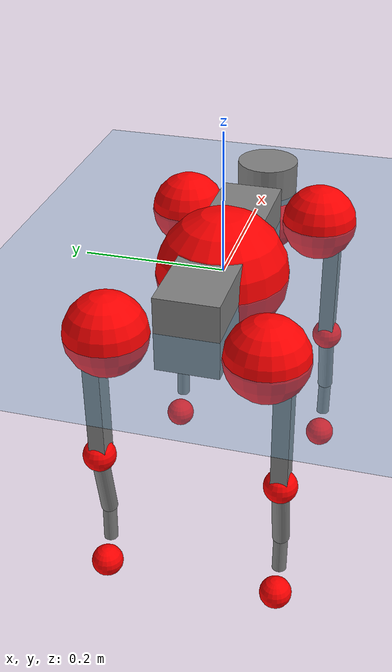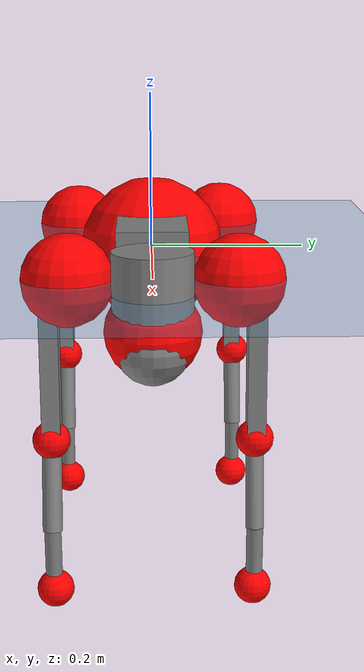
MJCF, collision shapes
<mujoco model="go2">
  <compiler angle="radian" assetdir="assets" balanceinertia="true" inertiafromgeom="false"/>

  <option timestep="0.005" density="1.2" viscosity="2e-05"/>

  <size nkey="1"/>

  <visual>
    <quality shadowsize="8192"/>
    <map shadowclip="0.5"/>
  </visual>

  <default>
    <default class="/">
      <geom contype="0" conaffinity="0" group="1" solref="-1000 -80"/>
      <site size="0.01 0.005 0.005" group="5"/>
      <general forcelimited="true" biastype="affine" gainprm="20" biasprm="0 -20 -0.5"/>
      <default class="go2">
        <joint armature="0.01" damping="0.01" frictionloss="0.2"/>
        <geom condim="1" margin="0.001"/>
        <default class="visual">
          <geom type="mesh" group="2"/>
        </default>
        <default class="collision">
          <geom group="3"/>
          <default class="foot">
            <geom size="0.022 0 0" condim="6" priority="1" friction="0.8 0.02 0.01" solimp="0.015 1 0.022"/>
          </default>
        </default>
        <default class="reward_collision_sphere">
          <geom group="5" rgba="1 0 0 1"/>
        </default>
      </default>
    </default>
  </default>

  <asset>
    <texture type="skybox" colorspace="auto" name="//unnamed_texture_0" builtin="gradient" rgb1="0.95 0.95 0.95" rgb2="0.95 0.95 0.95" width="100" height="600"/>
    <texture type="2d" colorspace="auto" name="texplane" builtin="checker" rgb1="0.345 0.575 0.748" rgb2="0.345 0.575 0.748" markrgb="1 1 1" width="512" height="512"/>
    <material name="MatPlane" class="/" texture="texplane" texuniform="true" texrepeat="2 2" specular="0.9"/>
    <material name="metal" class="/" rgba="0.9 0.95 0.95 1"/>
    <material name="black" class="/" rgba="0 0 0 1"/>
    <material name="white" class="/"/>
    <material name="gray" class="/" rgba="0.671705 0.692426 0.77427 1"/>
    <mesh name="base_0" class="/" file="base_0.obj"/>
    <mesh name="base_1" class="/" file="base_1.obj"/>
    <mesh name="base_2" class="/" file="base_2.obj"/>
    <mesh name="base_3" class="/" file="base_3.obj"/>
    <mesh name="base_4" class="/" file="base_4.obj"/>
    <mesh name="hip_0" class="/" file="hip_0.obj"/>
    <mesh name="hip_1" class="/" file="hip_1.obj"/>
    <mesh name="thigh_0" class="/" file="thigh_0.obj"/>
    <mesh name="thigh_1" class="/" file="thigh_1.obj"/>
    <mesh name="thigh_mirror_0" class="/" file="thigh_mirror_0.obj"/>
    <mesh name="thigh_mirror_1" class="/" file="thigh_mirror_1.obj"/>
    <mesh name="calf_0" class="/" file="calf_0.obj"/>
    <mesh name="calf_1" class="/" file="calf_1.obj"/>
    <mesh name="calf_mirror_0" class="/" file="calf_mirror_0.obj"/>
    <mesh name="calf_mirror_1" class="/" file="calf_mirror_1.obj"/>
    <mesh name="foot" class="/" file="foot.obj"/>
  </asset>

  <worldbody>
    <geom name="floor" class="/" size="100 100 0.125" type="plane" group="0" material="MatPlane"/>
    <light name="toplight_shadow" class="/" pos="0 0 5" dir="0.0990148 0.0990148 -0.990148" type="directional" ambient="0.04 0.04 0.04" diffuse="0.55 0.55 0.55" specular="0.12 0.12 0.12"/>
    <light name="toplight_fill" class="/" pos="0 0 5" dir="0.0990148 0.0990148 -0.990148" type="directional" castshadow="false" ambient="0.04 0.04 0.04" diffuse="0.3 0.3 0.3" specular="0.08 0.08 0.08"/>
    <body name="trunk" childclass="go2" pos="-0.00172008 0.000789806 -0.00267339" quat="0.999999 0.000500209 6.9359e-05 -0.000975205">
      <inertial pos="0.0177371 0.00223832 -0.00560519" quat="0.00289431 0.715249 -8.64686e-05 0.698864" mass="5.6745" diaginertia="0.0935659 0.0542309 0.0173845"/>
      <joint name="//unnamed_joint_0" type="free" armature="0" damping="0" frictionloss="0"/>
      <geom name="//unnamed_geom_1" class="visual" material="black" mesh="base_0"/>
      <geom name="//unnamed_geom_2" class="visual" material="black" mesh="base_1"/>
      <geom name="//unnamed_geom_3" class="visual" material="black" mesh="base_2"/>
      <geom name="//unnamed_geom_4" class="visual" material="white" mesh="base_3"/>
      <geom name="//unnamed_geom_5" class="visual" material="gray" mesh="base_4"/>
      <geom name="trunk_1" class="collision" size="0.175307 0.0435706 0.0531235" type="box"/>
      <geom name="trunk_2" class="collision" size="0.0465995 0.0419396" pos="0.277196 0 0.00934658" type="cylinder"/>
      <geom name="trunk_3" class="collision" size="0.0438036" pos="0.284977 0 -0.0560795"/>
      <geom name="//unnamed_geom_9" class="reward_collision_sphere" size="0.0931991"/>
      <geom name="//unnamed_geom_10" class="reward_collision_sphere" size="0.0559194" pos="0.272333 0 -0.0420596"/>
      <site name="imu" pos="-0.0122104 0.00955858 0.0261182" size="0.00931991"/>
      <camera name="track" pos="0 -1.7774 0" quat="0.707107 0.707107 0 0" mode="trackcom"/>
      <camera name="ego_camera" pos="0.303456 0 0.0420596" quat="-0.5 -0.5 0.5 0.5"/>
      <body name="FL_hip" pos="0.187884 0.0412286 -0.00242406" quat="1 0.000322047 0.000365472 0.000464077">
        <inertial pos="-0.00791163 0.00156666 -0.00235862" quat="0.494211 0.506145 0.503463 0.496082" mass="0.545972" diaginertia="0.000761838 0.000328375 0.000351329"/>
        <joint name="FL_hip_joint" pos="0 0 0" axis="0.999986 -0.000568842 -0.00519794" range="-1.05379 1.04278" armature="0.0100071" damping="0.0169312" frictionloss="0.177744"/>
        <geom name="//unnamed_geom_11" class="visual" material="metal" mesh="hip_0"/>
        <geom name="//unnamed_geom_12" class="visual" material="gray" mesh="hip_1"/>
        <geom name="//unnamed_geom_13" class="collision" size="0.0428716 0.0186398" pos="0 0.0710958 0" quat="0.707107 0.707107 0 0" type="cylinder"/>
        <geom name="//unnamed_geom_14" class="reward_collision_sphere" size="0.0559194" pos="0 0.0622089 0"/>
        <body name="FL_thigh" pos="0.00112242 0.0838251 -0.0021425" quat="1 0.000127992 0.000362849 -0.000442274">
          <inertial pos="-0.00305602 -0.0192633 -0.0286279" quat="0.833236 0.0848941 -0.0296237 0.545558" mass="0.908893" diaginertia="0.00520711 0.00310457 0.000632356"/>
          <joint name="FL_thigh_joint" pos="0 0 0" axis="0.0180747 0.999728 0.0147656" stiffness="0.0139892" range="-1.56228 3.45764" armature="0.00815245" damping="0.0187711" frictionloss="0.18625"/>
          <geom name="//unnamed_geom_15" class="visual" material="metal" mesh="thigh_0"/>
          <geom name="//unnamed_geom_16" class="visual" material="gray" mesh="thigh_1"/>
          <geom name="//unnamed_geom_17" class="collision" size="0.099257 0.0114169 0.0158438" pos="0 0 -0.0995411" quat="0.707107 0 0.707107 0" type="box"/>
          <body name="FL_calf" pos="-0.00194392 -0.000963344 -0.197502" quat="1 0.000165391 0.000102705 -0.000254904">
            <inertial pos="0.00358923 -0.0030389 -0.130119" quat="0.710277 -0.000480534 -0.00502893 0.703904" mass="0.192327" diaginertia="0.00131205 0.000782861 3.76811e-05"/>
            <joint name="FL_calf_joint" pos="0 0 0" axis="-0.000115502 1 6.31957e-05" stiffness="0.0146166" range="-2.6838 -0.842232" armature="0.00923047" damping="0.00791707" frictionloss="0.182142"/>
            <geom name="//unnamed_geom_18" class="visual" material="gray" mesh="calf_0"/>
            <geom name="//unnamed_geom_19" class="visual" material="black" mesh="calf_1"/>
            <geom name="FL_calf0" class="collision" size="0.0111839 0.0559194" pos="0.00778093 0 -0.0560795" quat="0.994493 0 -0.104807 0" type="cylinder"/>
            <geom name="//unnamed_geom_21" class="collision" size="0.0102519 0.0302897" pos="0.0194523 0 -0.138329" quat="0.999688 0 0.0249974 0" type="cylinder"/>
            <geom name="//unnamed_geom_22" class="visual" pos="0 0 -0.199082" quat="1 0 0 0" material="black" mesh="foot"/>
            <geom name="FL_foot" class="foot" size="0.0220032" pos="-0.00194523 0 -0.199082"/>
            <geom name="//unnamed_geom_24" class="reward_collision_sphere" size="0.0232998"/>
            <geom name="//unnamed_geom_25" class="reward_collision_sphere" size="0.0232998" pos="-0.00194523 0 -0.199082"/>
            <site name="FL_foot" class="foot" pos="-0.00194523 0 -0.199082" size="0.00931991"/>
          </body>
        </body>
      </body>
      <body name="FR_hip" pos="0.190756 -0.0385373 -0.000679523" quat="1 6.00996e-05 -0.000427945 -0.000163193">
        <inertial pos="-0.00739071 -0.0035699 -0.00130233" quat="0.497011 0.505685 0.498583 0.498675" mass="0.541062" diaginertia="0.000736765 0.00033842 0.000344812"/>
        <joint name="FR_hip_joint" pos="0 0 0" axis="1 0.000228602 -3.5805e-05" stiffness="0.00481559" range="-1.01688 1.03817" armature="0.00913017" damping="0.0123588" frictionloss="0.210755"/>
        <geom name="//unnamed_geom_26" class="visual" pos="0 -4.00386e-10 -1.71734e-08" quat="4.63268e-05 1 0 0" material="metal" mesh="hip_0"/>
        <geom name="//unnamed_geom_27" class="visual" pos="0 -6.49073e-10 4.24763e-08" quat="4.63268e-05 1 0 0" material="gray" mesh="hip_1"/>
        <geom name="//unnamed_geom_28" class="collision" size="0.0428716 0.0186398" pos="0 -0.0710958 0" quat="0.707107 0.707107 0 0" type="cylinder"/>
        <geom name="//unnamed_geom_29" class="reward_collision_sphere" size="0.0559194" pos="0 -0.0622089 0"/>
        <body name="FR_thigh" pos="0.0025913 -0.0851024 -0.000558947" quat="0.999999 -0.000179167 0.000278447 -0.00126835">
          <inertial pos="-0.00317709 0.0197773 -0.0296433" quat="0.54599 -0.0223235 0.0931019 0.832303" mass="0.953387" diaginertia="0.00496548 0.00320604 0.000620379"/>
          <joint name="FR_thigh_joint" pos="0 0 0" axis="0.00238459 -0.999993 0.00284793" range="-3.47663 1.59274" armature="0.00888249" damping="0.0119308" frictionloss="0.204017"/>
          <geom name="//unnamed_geom_30" class="visual" material="metal" mesh="thigh_mirror_0"/>
          <geom name="//unnamed_geom_31" class="visual" material="gray" mesh="thigh_mirror_1"/>
          <geom name="//unnamed_geom_32" class="collision" size="0.099257 0.0114169 0.0158438" pos="0 0 -0.0995411" quat="0.707107 0 0.707107 0" type="box"/>
          <body name="FR_calf" pos="-9.66691e-05 -0.000729758 -0.198203" quat="1 6.04118e-05 -9.89711e-05 -2.22238e-05">
            <inertial pos="0.00771525 -0.000241677 -0.134343" quat="0.707788 0.00660803 0.00392252 0.706383" mass="0.1976" diaginertia="0.00137864 0.000815314 3.90224e-05"/>
            <joint name="FR_calf_joint" pos="0 0 0" axis="0.0147828 -0.999887 0.00271183" range="0.819679 2.66614" armature="0.00999856" damping="0.0118848" frictionloss="0.18606"/>
            <geom name="//unnamed_geom_33" class="visual" material="gray" mesh="calf_mirror_0"/>
            <geom name="//unnamed_geom_34" class="visual" material="black" mesh="calf_mirror_1"/>
            <geom name="FR_calf0" class="collision" size="0.0121159 0.0559194" pos="0.00972616 0 -0.0560795" quat="0.995004 0 -0.0998334 0" type="cylinder"/>
            <geom name="//unnamed_geom_36" class="collision" size="0.0102519 0.0302897" pos="0.0194523 0 -0.138329" quat="0.999688 0 0.0249974 0" type="cylinder"/>
            <geom name="//unnamed_geom_37" class="visual" pos="0 0 -0.199082" quat="1 0 0 0" material="black" mesh="foot"/>
            <geom name="FR_foot" class="foot" size="0.0190632" pos="-0.00194523 0 -0.199082"/>
            <geom name="//unnamed_geom_39" class="reward_collision_sphere" size="0.0232998"/>
            <geom name="//unnamed_geom_40" class="reward_collision_sphere" size="0.0232998" pos="-0.00194523 0 -0.199082"/>
            <site name="FR_foot" class="foot" pos="-0.00194523 0 -0.199082" size="0.00931991"/>
          </body>
        </body>
      </body>
      <body name="RL_hip" pos="-0.189954 0.0380294 0.00148253" quat="1 8.58733e-05 0.000338538 0.000134083">
        <inertial pos="0.00463393 0.00185739 0.00117379" quat="0.504784 0.500587 0.497327 0.497264" mass="0.54441" diaginertia="0.000769004 0.000320472 0.00033925"/>
        <joint name="RL_hip_joint" pos="0 0 0" axis="-0.999996 0.00257853 -0.00127585" stiffness="0.0113096" range="-1.07789 1.04538" armature="0.0093828" damping="0.000580314" frictionloss="0.185362"/>
        <geom name="//unnamed_geom_41" class="visual" pos="-3.30676e-10 0 -6.482e-08" quat="4.63268e-05 0 1 0" material="metal" mesh="hip_0"/>
        <geom name="//unnamed_geom_42" class="visual" pos="-5.36065e-10 0 -5.74861e-08" quat="4.63268e-05 0 1 0" material="gray" mesh="hip_1"/>
        <geom name="//unnamed_geom_43" class="collision" size="0.0428716 0.0186398" pos="0 0.0710958 0" quat="0.707107 0.707107 0 0" type="cylinder"/>
        <geom name="//unnamed_geom_44" class="reward_collision_sphere" size="0.0559194" pos="0 0.0622089 0"/>
        <body name="RL_thigh" pos="-0.00082514 0.0813378 0.00217039" quat="1 1.96411e-06 2.31877e-06 -4.6604e-06">
          <inertial pos="-0.00380911 -0.0191707 -0.0287549" quat="0.829522 0.0848066 -0.020093 0.551631" mass="0.948397" diaginertia="0.00540333 0.00330941 0.000650537"/>
          <joint name="RL_thigh_joint" pos="0 0 0" axis="0.00140309 0.999995 0.00297542" range="-0.520916 4.50418" armature="0.0105577" damping="0.00463067" frictionloss="0.193905"/>
          <geom name="//unnamed_geom_45" class="visual" material="metal" mesh="thigh_0"/>
          <geom name="//unnamed_geom_46" class="visual" material="gray" mesh="thigh_1"/>
          <geom name="//unnamed_geom_47" class="collision" size="0.099257 0.0114169 0.0158438" pos="0 0 -0.0995411" quat="0.707107 0 0.707107 0" type="box"/>
          <body name="RL_calf" pos="-0.00173477 0.00196343 -0.200885" quat="1 0.000437406 0.000143422 -1.91784e-05">
            <inertial pos="0.0084903 -0.00293407 -0.130181" quat="0.713971 -0.000346466 -0.00445206 0.700161" mass="0.191726" diaginertia="0.00129109 0.000839019 3.66405e-05"/>
            <joint name="RL_calf_joint" pos="0 0 0" axis="0.00587303 0.999973 -0.00447526" stiffness="0.0116627" range="-2.67373 -0.835793" armature="0.00953535" damping="0" frictionloss="0.208933"/>
            <geom name="//unnamed_geom_48" class="visual" material="gray" mesh="calf_0"/>
            <geom name="//unnamed_geom_49" class="visual" material="black" mesh="calf_1"/>
            <geom name="RL_calf0" class="collision" size="0.0121159 0.0559194" pos="0.00972616 0 -0.0560795" quat="0.995004 0 -0.0998334 0" type="cylinder"/>
            <geom name="//unnamed_geom_51" class="collision" size="0.0102519 0.0302897" pos="0.0194523 0 -0.138329" quat="0.999688 0 0.0249974 0" type="cylinder"/>
            <geom name="//unnamed_geom_52" class="visual" pos="0 0 -0.199082" quat="1 0 0 0" material="black" mesh="foot"/>
            <geom name="RL_foot" class="foot" size="0.0215624" pos="-0.00194523 0 -0.199082"/>
            <geom name="//unnamed_geom_54" class="reward_collision_sphere" size="0.0232998"/>
            <geom name="//unnamed_geom_55" class="reward_collision_sphere" size="0.0232998" pos="-0.00194523 0 -0.199082"/>
            <site name="RL_foot" class="foot" pos="-0.00194523 0 -0.199082" size="0.00931991"/>
          </body>
        </body>
      </body>
      <body name="RR_hip" pos="-0.187795 -0.0441864 -0.0015994" quat="0.999999 -0.000956099 -0.000459257 0.00111684">
        <inertial pos="0.00439036 -0.00144418 -0.00189735" quat="0.499318 0.497 0.49812 0.505518" mass="0.577772" diaginertia="0.00077123 0.000329843 0.00034876"/>
        <joint name="RR_hip_joint" pos="0 0 0" axis="-0.999919 -0.0126173 -0.00183995" range="-0.99285 1.02884" armature="0.00818038" damping="0.0128144" frictionloss="0.211252"/>
        <geom name="//unnamed_geom_56" class="visual" pos="3.2777e-10 -4.00386e-10 -4.76467e-08" quat="2.14617e-09 4.63268e-05 4.63268e-05 -1" material="metal" mesh="hip_0"/>
        <geom name="//unnamed_geom_57" class="visual" pos="5.4325e-10 -6.49073e-10 -9.99624e-08" quat="2.14617e-09 4.63268e-05 4.63268e-05 -1" material="gray" mesh="hip_1"/>
        <geom name="//unnamed_geom_58" class="collision" size="0.0428716 0.0186398" pos="0 -0.0710958 0" quat="0.707107 0.707107 0 0" type="cylinder"/>
        <geom name="//unnamed_geom_59" class="reward_collision_sphere" size="0.0559194" pos="0 -0.0622089 0"/>
        <body name="RR_thigh" pos="0.00182821 -0.0851784 -0.000974982" quat="1 9.01602e-06 -6.45878e-07 8.46219e-06">
          <inertial pos="-0.00573973 0.0215824 -0.0305937" quat="0.550295 -0.0199368 0.086484 0.83024" mass="0.913027" diaginertia="0.00530226 0.00320514 0.000627687"/>
          <joint name="RR_thigh_joint" pos="0 0 0" axis="-0.00040976 -0.999999 0.000981959" stiffness="0.0015982" range="-4.52387 0.522522" armature="0.008967" damping="0.018121" frictionloss="0.179369"/>
          <geom name="//unnamed_geom_60" class="visual" material="metal" mesh="thigh_mirror_0"/>
          <geom name="//unnamed_geom_61" class="visual" material="gray" mesh="thigh_mirror_1"/>
          <geom name="//unnamed_geom_62" class="collision" size="0.099257 0.0114169 0.0158438" pos="0 0 -0.0995411" quat="0.707107 0 0.707107 0" type="box"/>
          <body name="RR_calf" pos="-0.000863926 -0.000173477 -0.198979" quat="1 0.000406742 -7.99571e-05 -3.71014e-05">
            <inertial pos="0.00866451 0.000749375 -0.132789" quat="0.702106 -0.00427178 0.00581417 0.712035" mass="0.187084" diaginertia="0.00123703 0.000792922 3.66882e-05"/>
            <joint name="RR_calf_joint" pos="0 0 0" axis="-0.00156152 -0.999999 -0.000699847" range="0.845474 2.7725" armature="0.00817366" damping="0.0226764" frictionloss="0.194997"/>
            <geom name="//unnamed_geom_63" class="visual" material="gray" mesh="calf_mirror_0"/>
            <geom name="//unnamed_geom_64" class="visual" material="black" mesh="calf_mirror_1"/>
            <geom name="RR_calf0" class="collision" size="0.0121159 0.0559194" pos="0.00972616 0 -0.0560795" quat="0.995004 0 -0.0998334 0" type="cylinder"/>
            <geom name="//unnamed_geom_66" class="collision" size="0.0102519 0.0302897" pos="0.0194523 0 -0.138329" quat="0.999688 0 0.0249974 0" type="cylinder"/>
            <geom name="//unnamed_geom_67" class="visual" pos="0 0 -0.199082" quat="1 0 0 0" material="black" mesh="foot"/>
            <geom name="RR_foot" class="foot" size="0.0166541" pos="-0.00194523 0 -0.199082"/>
            <geom name="//unnamed_geom_69" class="reward_collision_sphere" size="0.0232998"/>
            <geom name="//unnamed_geom_70" class="reward_collision_sphere" size="0.0232998" pos="-0.00194523 0 -0.199082"/>
            <site name="RR_foot" class="foot" pos="-0.00194523 0 -0.199082" size="0.00931991"/>
          </body>
        </body>
      </body>
    </body>
  </worldbody>

  <contact>
    <pair class="/" geom1="floor" geom2="FL_foot" name="//unnamed_contact_0"/>
    <pair class="/" geom1="floor" geom2="FR_foot" name="//unnamed_contact_1"/>
    <pair class="/" geom1="floor" geom2="RL_foot" name="//unnamed_contact_2"/>
    <pair class="/" geom1="floor" geom2="RR_foot" name="//unnamed_contact_3"/>
  </contact>

  <actuator>
    <general name="FL_hip" class="/" joint="FL_hip_joint" forcerange="-22.9206 22.9206" gainprm="17.6508" biasprm="0 -17.6508 -0.472386"/>
    <general name="FL_thigh" class="/" joint="FL_thigh_joint" forcerange="-22.4766 22.4766" gainprm="17.6508" biasprm="0 -17.6508 -0.472386"/>
    <general name="FL_calf" class="/" joint="FL_calf_joint" forcerange="-42.7111 42.7111" gainprm="17.6508" biasprm="0 -17.6508 -0.472386"/>
    <general name="FR_hip" class="/" joint="FR_hip_joint" forcerange="-22.039 22.039" gainprm="17.6508" biasprm="0 -17.6508 -0.472386"/>
    <general name="FR_thigh" class="/" joint="FR_thigh_joint" forcerange="-23.974 23.974" gainprm="17.6508" biasprm="0 -17.6508 -0.472386"/>
    <general name="FR_calf" class="/" joint="FR_calf_joint" forcerange="-37.8963 37.8963" gainprm="17.6508" biasprm="0 -17.6508 -0.472386"/>
    <general name="RL_hip" class="/" joint="RL_hip_joint" forcerange="-21.6008 21.6008" gainprm="17.6508" biasprm="0 -17.6508 -0.472386"/>
    <general name="RL_thigh" class="/" joint="RL_thigh_joint" forcerange="-24.3466 24.3466" gainprm="17.6508" biasprm="0 -17.6508 -0.472386"/>
    <general name="RL_calf" class="/" joint="RL_calf_joint" forcerange="-40.925 40.925" gainprm="17.6508" biasprm="0 -17.6508 -0.472386"/>
    <general name="RR_hip" class="/" joint="RR_hip_joint" forcerange="-22.8285 22.8285" gainprm="17.6508" biasprm="0 -17.6508 -0.472386"/>
    <general name="RR_thigh" class="/" joint="RR_thigh_joint" forcerange="-23.4825 23.4825" gainprm="17.6508" biasprm="0 -17.6508 -0.472386"/>
    <general name="RR_calf" class="/" joint="RR_calf_joint" forcerange="-40.6686 40.6686" gainprm="17.6508" biasprm="0 -17.6508 -0.472386"/>
  </actuator>

  <sensor>
    <gyro site="imu" name="imu_angular_velocity"/>
    <velocimeter site="imu" name="imu_linear_velocity"/>
    <framelinvel objtype="site" objname="FL_foot" name="FL_foot_global_linear_velocity"/>
    <framelinvel objtype="site" objname="FR_foot" name="FR_foot_global_linear_velocity"/>
    <framelinvel objtype="site" objname="RL_foot" name="RL_foot_global_linear_velocity"/>
    <framelinvel objtype="site" objname="RR_foot" name="RR_foot_global_linear_velocity"/>
  </sensor>

  <keyframe>
    <key name="home" qpos="0 0 0.325 1 0 0 0 0.1 0.8 -1.5 -0.1 -0.8 1.5 -0.1 0.8 -1.5 0.1 -0.8 1.5"/>
  </keyframe>
</mujoco>
